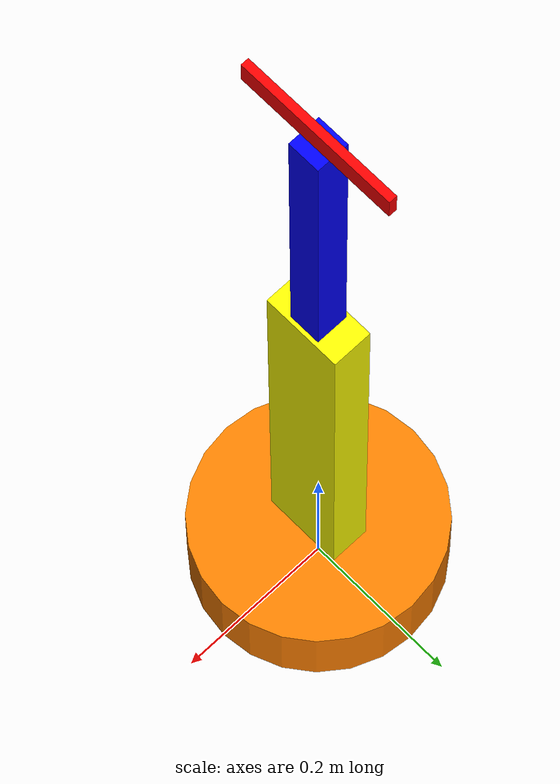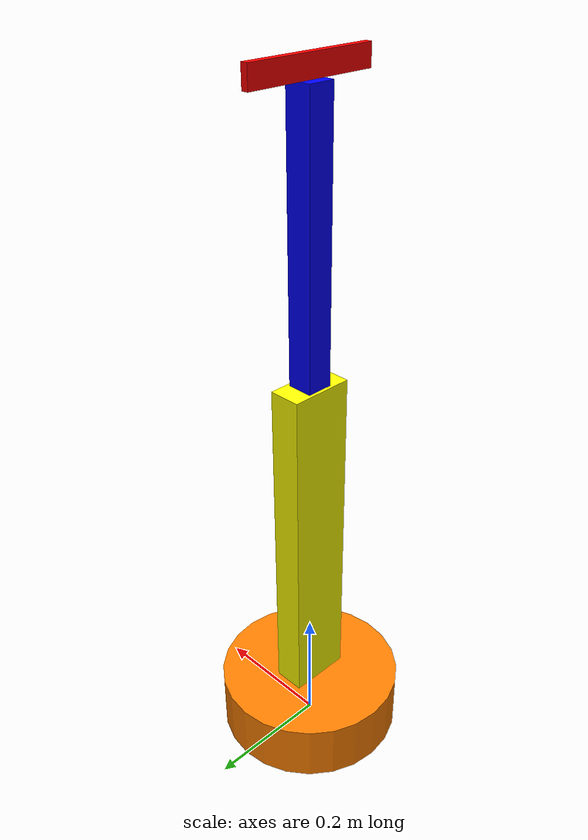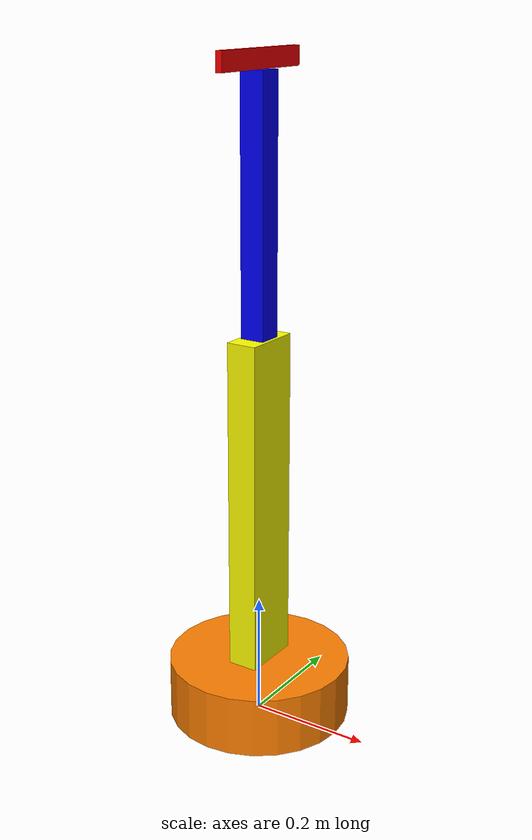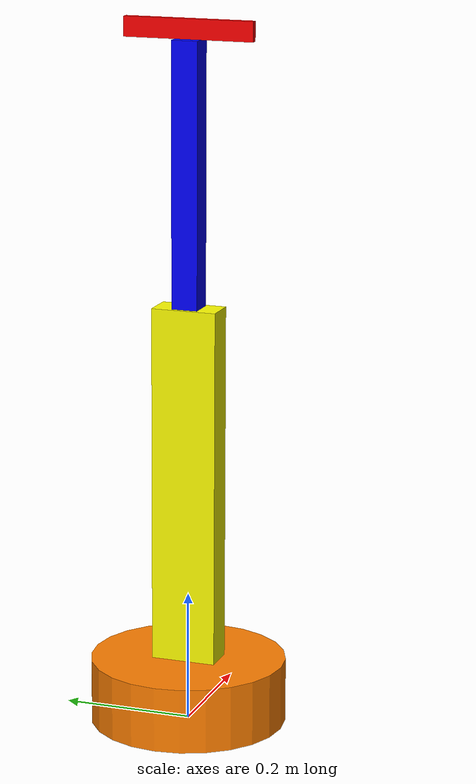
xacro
<?xml version="1.0"?>
<robot name="manipulator_bot" xmlns:xacro="http://www.ros.org/wiki/xacro" >

    <xacro:include filename="common_properties.xacro" />

    <xacro:include filename="manipulator.xacro" />

    <!-- if true then launch display.launch.xml and then controller.launch.py -->
    <!-- if false then launch hardware_controller.launch.py -->

    <xacro:property name="is_sim" value="false" />

    <xacro:if value="${is_sim}" >
        <xacro:include filename="ros2_controller_gazebo.xacro" />
    </xacro:if>

    <xacro:unless value="${is_sim}" >
        <xacro:include filename="ros2_controller.xacro" />
    </xacro:unless>

</robot>

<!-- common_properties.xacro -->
<robot xmlns:xacro="http://www.ros.org/wiki/xacro">
    <material name="green">
        <color rgba="0 1 0 1"/>
    </material>

    <material name="yellow">
        <color rgba="1 1 0 1"/>
    </material>

    <material name="orange">
        <color rgba="1 0.5 0 1"/>
    </material>

    <material name="grey">
        <color rgba="0.5 0.5 0.5 1"/>
    </material>

    <material name="blue">
        <color rgba="0 0 1 1" />
    </material>

    <material name="red">
        <color rgba="1 0 0 1" />
    </material>

    <xacro:macro name="box_inertia" params="m l b h xyz rpy" >
        <inertial>
            <origin xyz="${xyz}" rpy="${rpy}" />
            <mass value="${m}" />
            <inertia ixx="${(m/12) * (b*b + h*h)}" ixy="0" ixz="0"
                     iyy="${(m/12) * (l*l + h*h)}" iyz="0"
                     izz="${(m/12) * (l*l + b*b)}" />
        </inertial>
    </xacro:macro>

    <xacro:macro name="cylinder_inertia" params="m r h xyz rpy" >
        <inertial>
            <origin xyz="${xyz}" rpy="${rpy}" />
            <mass value="${m}" />
            <inertia ixx="${(m/12) * (3*r*r + h*h)}" ixy="0" ixz="0"
                     iyy="${(m/12) * (3*r*r + h*h)}" iyz="0"
                     izz="${(m/2)*r*r}" />
        </inertial>
    </xacro:macro>

    <xacro:macro name="sphere_inertia" params="m r xyz rpy" >
        <inertial>
            <origin xyz="${xyz}" rpy="${rpy}" />
            <mass value="${m}" />
            <inertia ixx="${(2/5)*m*r*r}" ixy="0" ixz="0"
                     iyy="${(2/5)*m*r*r}" iyz="0"
                     izz="${(2/5)*m*r*r}" />
        </inertial>
    </xacro:macro>

</robot>

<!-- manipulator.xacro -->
<robot xmlns:xacro="http://www.ros.org/wiki/xacro" >

    <xacro:property name="base_radius" value="0.15" />
    <xacro:property name="base_height" value="0.1" />
    <xacro:property name="link1_length" value="0.05" />
    <xacro:property name="link1_width" value="0.1" />
    <xacro:property name="link1_height" value="0.6" />
    <xacro:property name="link2_length" value="0.04" />
    <xacro:property name="link2_width" value="0.04" />
    <xacro:property name="link2_height" value="0.4" />
    <xacro:property name="link3_length" value="0.01" />
    <xacro:property name="link3_width" value="0.2" />
    <xacro:property name="link3_height" value="0.03" />

    <link name="floor" />

    <link name="base_link" >
        <visual>
            <geometry>
                <cylinder radius="${base_radius}" length="${base_height}" />
            </geometry>
            <origin xyz="0 0 ${base_height / 2.0 }" rpy="0 0 0"/>
            <material name="orange" />
        </visual>
        <collision>
            <geometry>
                <cylinder radius="${base_radius}" length="${base_height}" />
            </geometry>
            <origin xyz="0 0 ${base_height / 2.0 }" rpy="0 0 0"/>
            <material name="orange" />
        </collision>
        <xacro:cylinder_inertia m="2" r="${base_radius}" h="${base_height}"
                           xyz="0 0 ${base_height/ 2.0 }" rpy="0 0 0"   />
    </link>
    <link name="link1" >
        <visual>
            <geometry>
                <box size="${link1_length} ${link1_width} ${link1_height}" />
            </geometry>
            <origin xyz="0 0 ${link1_height / 2.0}" rpy="0 0 0"/>
            <material name="yellow" />
        </visual>
        <collision>
            <geometry>
                <box size="${link1_length} ${link1_width} ${link1_height}" />
            </geometry>
            <origin xyz="0 0 ${link1_height / 2.0}" rpy="0 0 0"/>
            <material name="yellow" />
        </collision>
        <xacro:box_inertia m="0.5" l="${link1_length}" b="${link1_width}" h="${link1_height}"
                           xyz="0 0 ${link1_height / 2.0}" rpy="0 0 0"   />
    </link>

    <link name="link2" >
        <visual>
            <geometry>
                <box size="${link2_length} ${link2_width} ${link2_height}" />
            </geometry>
            <origin xyz="0 0 ${link2_height / 2.0}" rpy="0 0 0"/>
            <material name="blue" />
        </visual>
        <collision>
            <geometry>
                <box size="${link2_length} ${link2_width} ${link2_height}" />
            </geometry>
            <origin xyz="0 0 ${link2_height / 2.0}" rpy="0 0 0"/>
            <material name="blue" />
        </collision>
        <xacro:box_inertia m="0.3" l="${link2_length}" b="${link2_width}" h="${link2_height}"
                           xyz="0 0 ${link2_height / 2.0}" rpy="0 0 0"   />
    </link>

    <link name="link3" >
        <visual>
            <geometry>
                <box size="${link3_length} ${link3_width} ${link3_height}" />
            </geometry>
            <origin xyz="0 0 ${link3_height / 2.0}" rpy="0 0 0"/>
            <material name="red" />
        </visual>
        <collision>
            <geometry>
                <box size="${link3_length} ${link3_width} ${link3_height}" />
            </geometry>
            <origin xyz="0 0 ${link3_height / 2.0}" rpy="0 0 0"/>
            <material name="red" />
        </collision>
        <xacro:box_inertia m="0.3" l="${link3_length}" b="${link3_width}" h="${link3_height}"
                           xyz="0 0 ${link3_height / 2.0}" rpy="0 0 0"   />
    </link>

    <joint name="floor_base" type="fixed" >
        <parent link="floor" />
        <child link="base_link" />
        <origin xyz="0 0 0" rpy="0 0 0" />
    </joint>

    <joint name="joint1" type="revolute" >
        <parent link="base_link" />
        <child link="link1" />
        <origin xyz="0 0 ${base_height / 2.0}" rpy="0 0 0" />
        <axis xyz="0 0 1" />
        <limit lower="${-pi}" upper="${pi}" effort="100.0" velocity="100.0"/>
        <dynamics damping="0.1" friction="0.05"/>
    </joint>

    <joint name="joint2" type="revolute" >
        <parent link="link1" />
        <child link="link2" />
        <origin xyz="0 0 ${link1_height}" rpy="0 0 0" />
        <axis xyz="1 0 0" />
        <limit lower="${-pi}" upper="${pi}" effort="100.0" velocity="100.0"/>
        <dynamics damping="0.1" friction="0.05"/>
    </joint>

    <joint name="joint3" type="fixed" >
        <parent link="link2" />
        <child link="link3" />
        <origin xyz="0 0 ${link2_height}" rpy="0 0 0" />
    </joint>

</robot>
